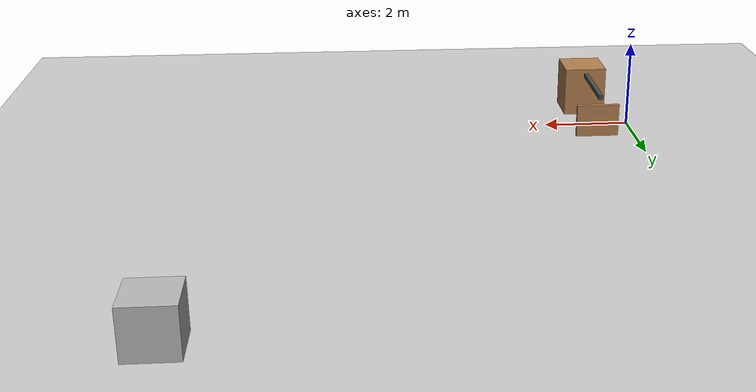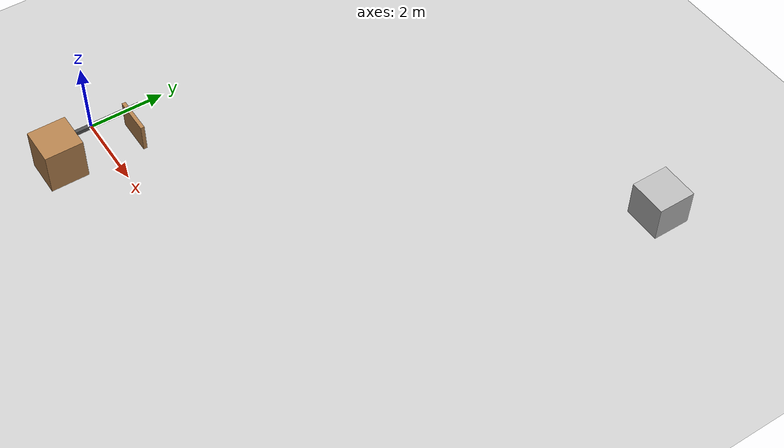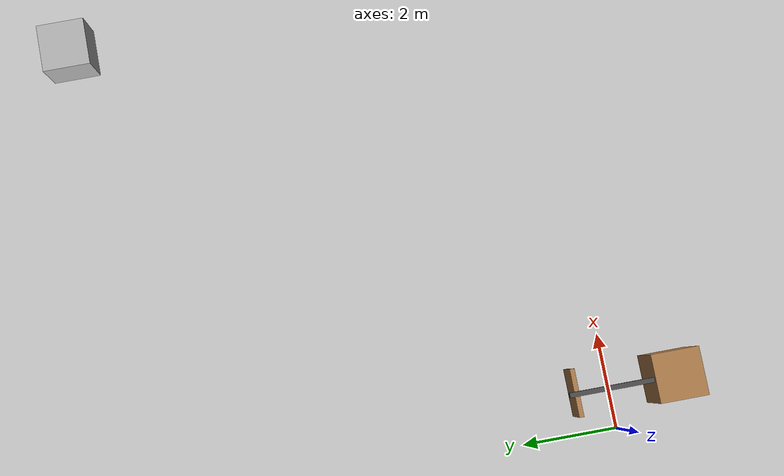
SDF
<sdf version="1.5">
 <world name="default">
  <include><uri>model://sun</uri></include>
  <include><uri>model://ground_plane</uri></include>
  <model name="box_right">
   <pose>0.9 -1.25 0.58 0 0 0</pose>
   <link name="link">
    <inertial>
     <mass>100</mass>
     <inertia><ixx>16.6667</ixx><ixy>0</ixy><ixz>0</ixz><iyy>16.6667</iyy><iyz>0</iyz><izz>16.6667</izz></inertia>
    </inertial>
    <collision name="collision"><geometry><box><size>1 1 1.16</size></box></geometry></collision>
    <visual name="visual">
     <geometry><box><size>1 1 1.16</size></box></geometry>
     <material>
      <script><name>Gazebo/Wood</name><uri>file://media/materials/scripts/gazebo.material</uri></script>
     </material>
    </visual>
   </link>
  </model>
  <model name="box_left">
   <pose>0.9 0.8 0.38 0 0 0</pose>
   <link name="link">
    <inertial>
     <mass>100</mass>
     <inertia><ixx>16.6667</ixx><ixy>0</ixy><ixz>0</ixz><iyy>16.6667</iyy><iyz>0</iyz><izz>16.6667</izz></inertia>
    </inertial>
    <collision name="collision">
     <geometry><box><size>1 0.1 0.76</size></box></geometry>
     <surface><friction><ode><mu>0.25</mu><mu2>0.25</mu2></ode></friction></surface>
    </collision>
    <visual name="visual">
     <geometry><box><size>1 0.1 0.76</size></box></geometry>
     <material>
      <script><name>Gazebo/Wood</name><uri>file://media/materials/scripts/gazebo.material</uri></script>
     </material>
    </visual>
   </link>
  </model>
  <model name="bar">
   <pose>0.89 0 1.01 0 0 1.57</pose>
   <link name="link">
    <inertial>
     <mass>2</mass>
     <inertia>
      <ixx>0.333333</ixx>
      <ixy>0</ixy>
      <ixz>0</ixz>
      <iyy>0.333333</iyy>
      <iyz>0</iyz>
      <izz>0.333333</izz>
     </inertia>
    </inertial>
    <collision name="collision">
     <geometry><box><size>2 0.1 0.1</size></box></geometry>
     <surface><friction><ode><mu>0.6</mu><mu2>0.6</mu2></ode></friction></surface>
    </collision>
    <visual name="visual">
     <geometry><box><size>2 0.1 0.1</size></box></geometry>
     <material>
      <script><name>Gazebo/Road</name><uri>file://media/materials/scripts/gazebo.material</uri></script>
     </material>
    </visual>
   </link>
  </model>
  <model name="box">
   <pose>10 10 0.5 0 0 0</pose>
   <link name="link">
    <collision name="collision"><geometry><box><size>1 1 1</size></box></geometry></collision>
    <visual name="visual"><geometry><box><size>1 1 1</size></box></geometry></visual>
   </link>
   <plugin name="model_push" filename="/home/danilo/gazebo_plugin_tutorial/build/libmodel_push.so"/>
  </model>
 </world>
</sdf>
